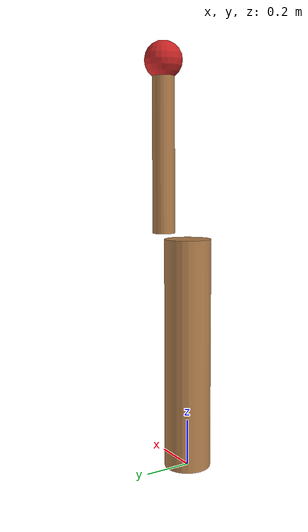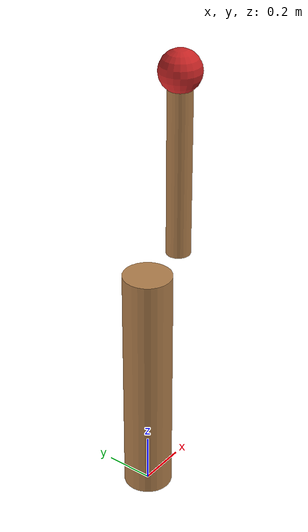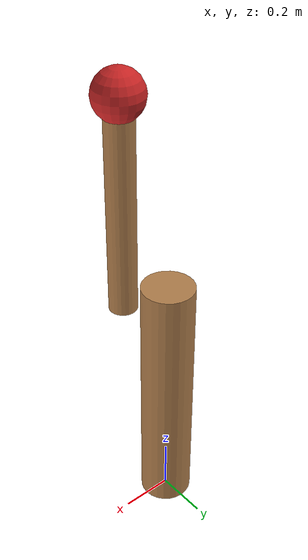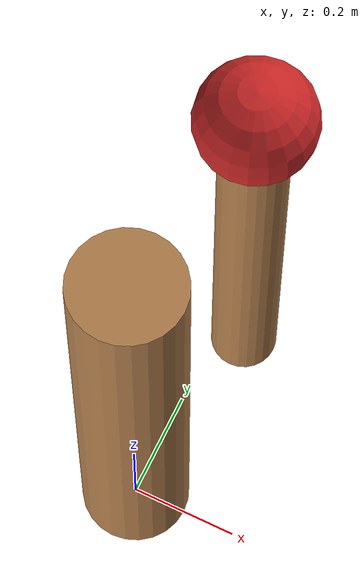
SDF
<sdf version="1.7">
  <model name="pendulum_simple">
    <link name="base">
      <inertial>
        <inertia>
          <ixx>0.008583333333333333</ixx>
          <iyy>0.008583333333333333</iyy>
          <izz>0.0005000000000000001</izz>
          <ixy>0.0</ixy>
          <ixz>0.0</ixz>
          <iyz>0.0</iyz>
        </inertia>
        <mass>0.1</mass>
      </inertial>
      <pose>0.0 0.0 0.5 0.0 0.0 0.0</pose>
      <visual name="viz">
        <geometry>
          <cylinder>
            <radius>0.1</radius>
            <length>1.0</length>
          </cylinder>
        </geometry>
        <material>
          <script>
            <uri>file://media/materials/scripts/gazebo.material</uri>
            <name>Gazebo/Wood</name>
          </script>
        </material>
      </visual>
      <collision name="coll_base">
        <geometry>
          <cylinder>
            <radius>0.1</radius>
            <length>1.0</length>
          </cylinder>
        </geometry>
      </collision>
    </link>
    <link name="arm">
      <inertial>
        <inertia>
          <ixx>0.00475</ixx>
          <iyy>0.00475</iyy>
          <izz>0.00012500000000000003</izz>
          <ixy>0.0</ixy>
          <ixz>0.0</ixz>
          <iyz>0.0</iyz>
        </inertia>
        <mass>0.1</mass>
      </inertial>
      <pose relative_to="base_arm/arm">0.0 0.0 0.385 0.0 0.0 0.0</pose>
      <visual name="viz_arm">
        <geometry>
          <cylinder>
            <radius>0.05</radius>
            <length>0.75</length>
          </cylinder>
        </geometry>
        <material>
          <script>
            <uri>file://media/materials/scripts/gazebo.material</uri>
            <name>Gazebo/Wood</name>
          </script>
        </material>
      </visual>
      <collision name="coll_arm">
        <geometry>
          <cylinder>
            <radius>0.05</radius>
            <length>0.75</length>
          </cylinder>
        </geometry>
      </collision>
    </link>
    <link name="ball">
      <inertial>
        <inertia>
          <ixx>0.0024083333333333335</ixx>
          <iyy>0.0024083333333333335</iyy>
          <izz>0.0024083333333333335</izz>
          <ixy>0.0</ixy>
          <ixz>0.0</ixz>
          <iyz>0.0</iyz>
        </inertia>
        <mass>0.5</mass>
      </inertial>
      <pose relative_to="arm_ball/ball">0.0 0.0 0.0 0.0 0.0 0.0</pose>
      <visual name="viz">
        <geometry>
          <sphere>
            <radius>0.085</radius>
          </sphere>
        </geometry>
        <material>
          <script>
            <uri>file://media/materials/scripts/gazebo.material</uri>
            <name>Gazebo/Red</name>
          </script>
        </material>
      </visual>
      <collision name="coll_ball">
        <geometry>
          <sphere>
            <radius>0.085</radius>
          </sphere>
        </geometry>
      </collision>
    </link>
    <joint name="world_base/base" type="fixed">
      <pose>0.0 0.0 0.0 0.0 0.0 0.0</pose>
      <parent>world</parent>
      <child>base</child>
      <axis>
        <xyz>0.0 0.0 1.0</xyz>
      </axis>
    </joint>
    <joint name="base_arm/arm" type="revolute">
      <pose relative_to="base">0.2 0.0 0.5 0.0 0.0 0.0</pose>
      <parent>base</parent>
      <child>arm</child>
      <axis>
        <xyz>1.0 0.0 0.0</xyz>
      </axis>
    </joint>
    <joint name="arm_ball/ball" type="revolute">
      <pose relative_to="arm">0.0 0.0 0.385 0.0 0.0 0.0</pose>
      <parent>arm</parent>
      <child>ball</child>
      <axis>
        <xyz>0.0 0.0 1.0</xyz>
      </axis>
    </joint>
  </model>
</sdf>
